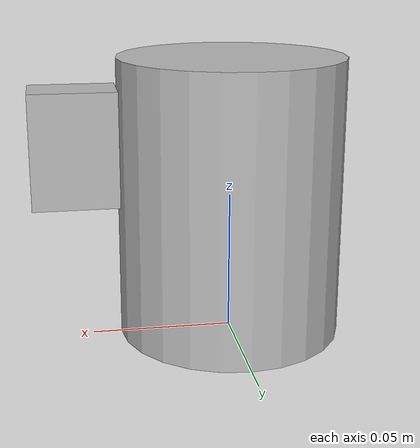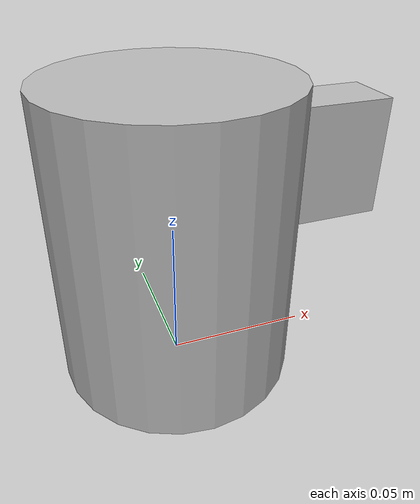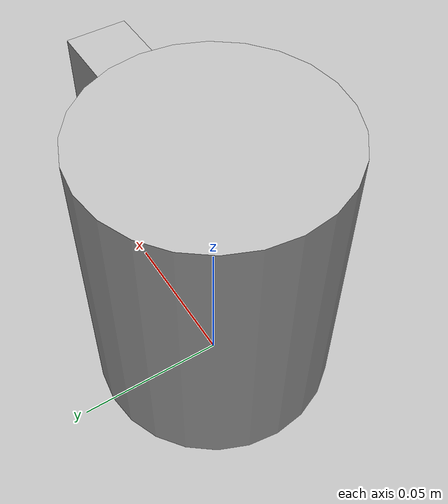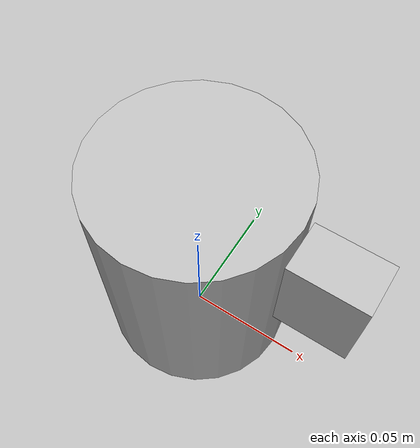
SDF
<sdf version='1.6'>
  <model name='simple_mug'>
    <link name='main_body'>
      <pose frame=''>0 0 0 0 -0 0</pose>
      <inertial>
        <pose frame=''>0.01 0 0.05 0 -0 0</pose>
        <mass>0.094</mass>
        <inertia>
          <ixx>0.000156</ixx>
          <ixy>0</ixy>
          <ixz>0</ixz>
          <iyy>0.000156</iyy>
          <iyz>0</iyz>
          <izz>0.00015</izz>
        </inertia>
      </inertial>
      <collision name='main_body_collision'>
        <pose frame=''>0 0 0.05 0 -0 0</pose>
        <geometry>
          <cylinder>
            <length>0.1</length>
            <radius>0.04</radius>
          </cylinder>
        </geometry>

        <surface>
          <friction>
            <ode>
              <mu>0.9</mu>
              <mu2>0.5</mu2>
            </ode>
          </friction>
        </surface>
      </collision>

      <visual name='main_body_visual'>
        <pose frame=''>0 0 0.05 0 -0 0</pose>
        <geometry>
          <cylinder>
            <length>0.1</length>
            <radius>0.04</radius>
          </cylinder>
        </geometry>
        <material>
          <drake:diffuse_map>rainbow.png</drake:diffuse_map>
        </material>
      </visual>
      <visual name='mug_handle_visual'>
        <!-- Half handle at the top of the mug -- contrast with the urdf file
             that has a half handle at the bottom.  -->
        <pose frame=''>0.055 0 0.07 0 -0 0</pose>
        <geometry>
          <box>
            <size>0.03 0.02 0.04</size>
          </box>
        </geometry>
        <material>
          <drake:diffuse_map>rainbow.png</drake:diffuse_map>
        </material>
      </visual>
    </link>
  </model>
</sdf>
